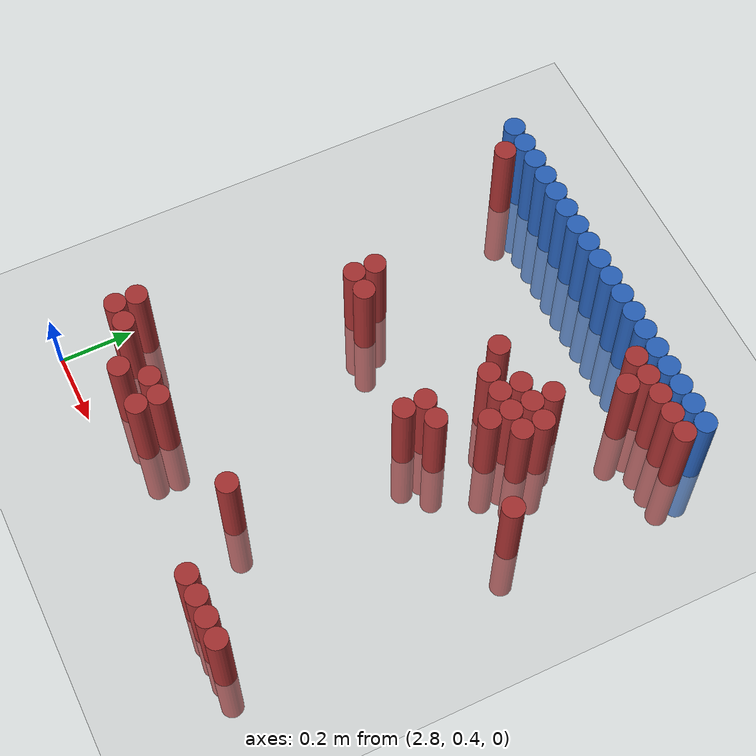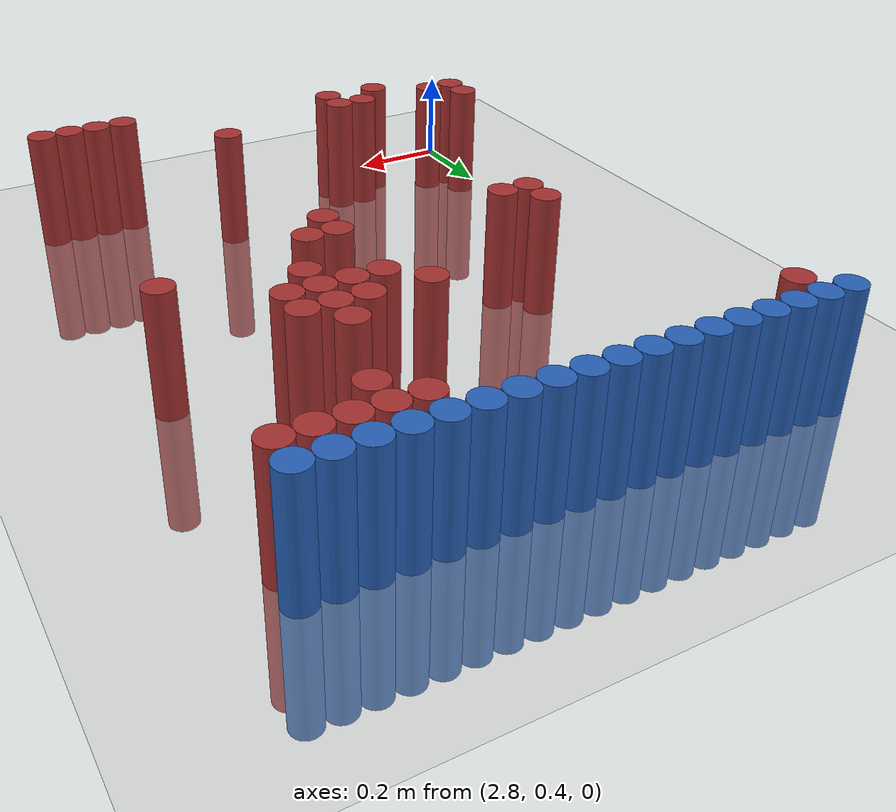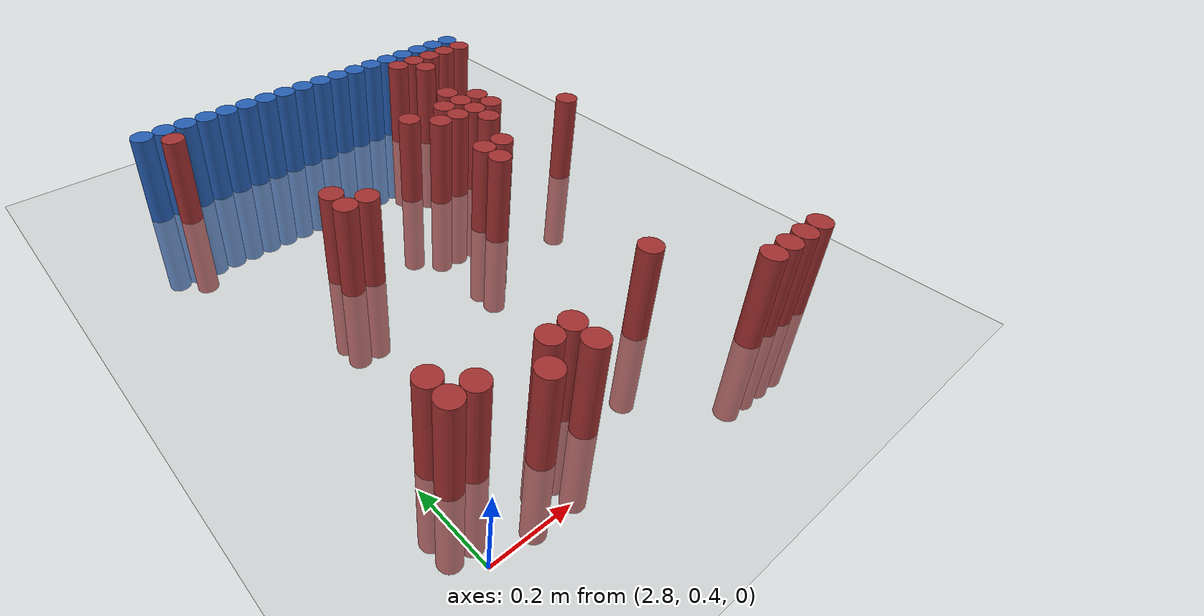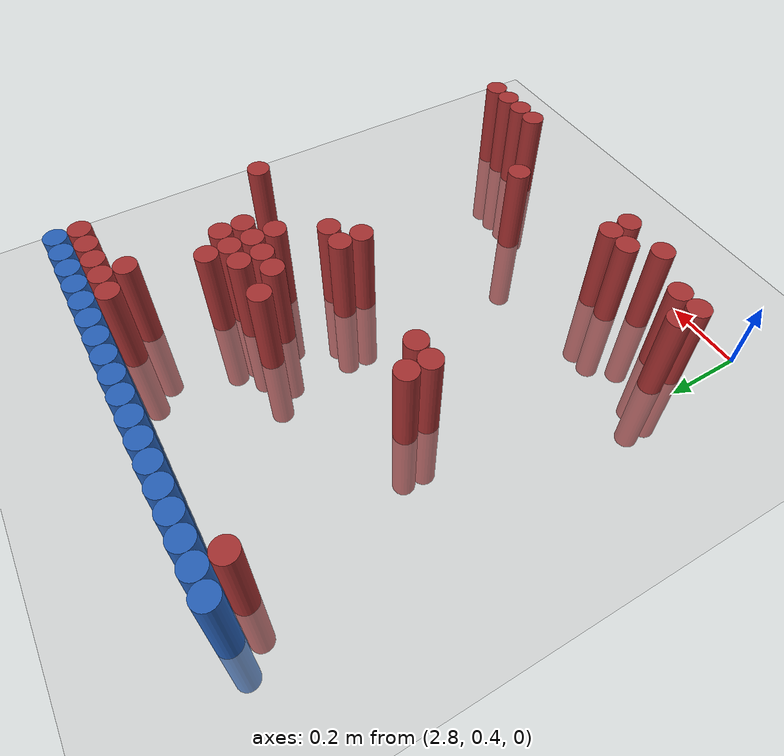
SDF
<sdf version="1.6">
 <world name="default">
  <model name="ground_plane">
   <static>1</static>
   <link name="link">
    <collision name="collision">
     <geometry><plane><normal>0 0 1</normal><size>100 100</size></plane></geometry>
     <surface><friction><ode><mu>100</mu><mu2>50</mu2></ode></friction></surface>
    </collision>
    <visual name="visual">
     <cast_shadows>0</cast_shadows>
     <geometry><plane><normal>0 0 1</normal><size>100 100</size></plane></geometry>
     <material>
      <script><uri>file://media/materials/scripts/gazebo.material</uri><name>Gazebo/Grey</name></script>
     </material>
    </visual>
   </link>
  </model>
  <model name="unit_cylinder_107">
   <static>1</static>
   <pose>2.790000 1.770000 0.000000 0.000000 0.000000 0.000000</pose>
   <link name="link">
    <inertial>
     <mass>1</mass>
     <inertia><ixx>0.145833</ixx><ixy>0</ixy><ixz>0</ixz><iyy>0.145833</iyy><iyz>0</iyz><izz>0.125</izz></inertia>
    </inertial>
    <collision name="collision">
     <geometry><cylinder><radius>0.030000</radius><length>0.5</length></cylinder></geometry>
    </collision>
    <visual name="visual">
     <geometry><cylinder><radius>0.030000</radius><length>0.5</length></cylinder></geometry>
     <material>
      <ambient>0.152000 0.379000 0.720000 1</ambient>
      <diffuse>0.152000 0.379000 0.720000 1</diffuse>
     </material>
     <material>
      <script><name>Gazebo/Grey</name><uri>file://media/materials/scripts/gazebo.material</uri></script>
     </material>
    </visual>
   </link>
  </model>
  <model name="unit_cylinder_108">
   <static>1</static>
   <pose>2.850000 1.770000 0.000000 0.000000 0.000000 0.000000</pose>
   <link name="link">
    <inertial>
     <mass>1</mass>
     <inertia><ixx>0.145833</ixx><ixy>0</ixy><ixz>0</ixz><iyy>0.145833</iyy><iyz>0</iyz><izz>0.125</izz></inertia>
    </inertial>
    <collision name="collision">
     <geometry><cylinder><radius>0.030000</radius><length>0.5</length></cylinder></geometry>
    </collision>
    <visual name="visual">
     <geometry><cylinder><radius>0.030000</radius><length>0.5</length></cylinder></geometry>
     <material>
      <ambient>0.152000 0.379000 0.720000 1</ambient>
      <diffuse>0.152000 0.379000 0.720000 1</diffuse>
     </material>
     <material>
      <script><name>Gazebo/Grey</name><uri>file://media/materials/scripts/gazebo.material</uri></script>
     </material>
    </visual>
   </link>
  </model>
  <model name="unit_cylinder_109">
   <static>1</static>
   <pose>2.910000 1.770000 0.000000 0.000000 0.000000 0.000000</pose>
   <link name="link">
    <inertial>
     <mass>1</mass>
     <inertia><ixx>0.145833</ixx><ixy>0</ixy><ixz>0</ixz><iyy>0.145833</iyy><iyz>0</iyz><izz>0.125</izz></inertia>
    </inertial>
    <collision name="collision">
     <geometry><cylinder><radius>0.030000</radius><length>0.5</length></cylinder></geometry>
    </collision>
    <visual name="visual">
     <geometry><cylinder><radius>0.030000</radius><length>0.5</length></cylinder></geometry>
     <material>
      <ambient>0.152000 0.379000 0.720000 1</ambient>
      <diffuse>0.152000 0.379000 0.720000 1</diffuse>
     </material>
     <material>
      <script><name>Gazebo/Grey</name><uri>file://media/materials/scripts/gazebo.material</uri></script>
     </material>
    </visual>
   </link>
  </model>
  <model name="unit_cylinder_110">
   <static>1</static>
   <pose>2.970000 1.770000 0.000000 0.000000 0.000000 0.000000</pose>
   <link name="link">
    <inertial>
     <mass>1</mass>
     <inertia><ixx>0.145833</ixx><ixy>0</ixy><ixz>0</ixz><iyy>0.145833</iyy><iyz>0</iyz><izz>0.125</izz></inertia>
    </inertial>
    <collision name="collision">
     <geometry><cylinder><radius>0.030000</radius><length>0.5</length></cylinder></geometry>
    </collision>
    <visual name="visual">
     <geometry><cylinder><radius>0.030000</radius><length>0.5</length></cylinder></geometry>
     <material>
      <ambient>0.152000 0.379000 0.720000 1</ambient>
      <diffuse>0.152000 0.379000 0.720000 1</diffuse>
     </material>
     <material>
      <script><name>Gazebo/Grey</name><uri>file://media/materials/scripts/gazebo.material</uri></script>
     </material>
    </visual>
   </link>
  </model>
  <model name="unit_cylinder_111">
   <static>1</static>
   <pose>3.030000 1.770000 0.000000 0.000000 0.000000 0.000000</pose>
   <link name="link">
    <inertial>
     <mass>1</mass>
     <inertia><ixx>0.145833</ixx><ixy>0</ixy><ixz>0</ixz><iyy>0.145833</iyy><iyz>0</iyz><izz>0.125</izz></inertia>
    </inertial>
    <collision name="collision">
     <geometry><cylinder><radius>0.030000</radius><length>0.5</length></cylinder></geometry>
    </collision>
    <visual name="visual">
     <geometry><cylinder><radius>0.030000</radius><length>0.5</length></cylinder></geometry>
     <material>
      <ambient>0.152000 0.379000 0.720000 1</ambient>
      <diffuse>0.152000 0.379000 0.720000 1</diffuse>
     </material>
     <material>
      <script><name>Gazebo/Grey</name><uri>file://media/materials/scripts/gazebo.material</uri></script>
     </material>
    </visual>
   </link>
  </model>
  <model name="unit_cylinder_112">
   <static>1</static>
   <pose>3.090000 1.770000 0.000000 0.000000 0.000000 0.000000</pose>
   <link name="link">
    <inertial>
     <mass>1</mass>
     <inertia><ixx>0.145833</ixx><ixy>0</ixy><ixz>0</ixz><iyy>0.145833</iyy><iyz>0</iyz><izz>0.125</izz></inertia>
    </inertial>
    <collision name="collision">
     <geometry><cylinder><radius>0.030000</radius><length>0.5</length></cylinder></geometry>
    </collision>
    <visual name="visual">
     <geometry><cylinder><radius>0.030000</radius><length>0.5</length></cylinder></geometry>
     <material>
      <ambient>0.152000 0.379000 0.720000 1</ambient>
      <diffuse>0.152000 0.379000 0.720000 1</diffuse>
     </material>
     <material>
      <script><name>Gazebo/Grey</name><uri>file://media/materials/scripts/gazebo.material</uri></script>
     </material>
    </visual>
   </link>
  </model>
  <model name="unit_cylinder_113">
   <static>1</static>
   <pose>3.150000 1.770000 0.000000 0.000000 0.000000 0.000000</pose>
   <link name="link">
    <inertial>
     <mass>1</mass>
     <inertia><ixx>0.145833</ixx><ixy>0</ixy><ixz>0</ixz><iyy>0.145833</iyy><iyz>0</iyz><izz>0.125</izz></inertia>
    </inertial>
    <collision name="collision">
     <geometry><cylinder><radius>0.030000</radius><length>0.5</length></cylinder></geometry>
    </collision>
    <visual name="visual">
     <geometry><cylinder><radius>0.030000</radius><length>0.5</length></cylinder></geometry>
     <material>
      <ambient>0.152000 0.379000 0.720000 1</ambient>
      <diffuse>0.152000 0.379000 0.720000 1</diffuse>
     </material>
     <material>
      <script><name>Gazebo/Grey</name><uri>file://media/materials/scripts/gazebo.material</uri></script>
     </material>
    </visual>
   </link>
  </model>
  <model name="unit_cylinder_114">
   <static>1</static>
   <pose>3.210000 1.770000 0.000000 0.000000 0.000000 0.000000</pose>
   <link name="link">
    <inertial>
     <mass>1</mass>
     <inertia><ixx>0.145833</ixx><ixy>0</ixy><ixz>0</ixz><iyy>0.145833</iyy><iyz>0</iyz><izz>0.125</izz></inertia>
    </inertial>
    <collision name="collision">
     <geometry><cylinder><radius>0.030000</radius><length>0.5</length></cylinder></geometry>
    </collision>
    <visual name="visual">
     <geometry><cylinder><radius>0.030000</radius><length>0.5</length></cylinder></geometry>
     <material>
      <ambient>0.152000 0.379000 0.720000 1</ambient>
      <diffuse>0.152000 0.379000 0.720000 1</diffuse>
     </material>
     <material>
      <script><name>Gazebo/Grey</name><uri>file://media/materials/scripts/gazebo.material</uri></script>
     </material>
    </visual>
   </link>
  </model>
  <model name="unit_cylinder_115">
   <static>1</static>
   <pose>3.270000 1.770000 0.000000 0.000000 0.000000 0.000000</pose>
   <link name="link">
    <inertial>
     <mass>1</mass>
     <inertia><ixx>0.145833</ixx><ixy>0</ixy><ixz>0</ixz><iyy>0.145833</iyy><iyz>0</iyz><izz>0.125</izz></inertia>
    </inertial>
    <collision name="collision">
     <geometry><cylinder><radius>0.030000</radius><length>0.5</length></cylinder></geometry>
    </collision>
    <visual name="visual">
     <geometry><cylinder><radius>0.030000</radius><length>0.5</length></cylinder></geometry>
     <material>
      <ambient>0.152000 0.379000 0.720000 1</ambient>
      <diffuse>0.152000 0.379000 0.720000 1</diffuse>
     </material>
     <material>
      <script><name>Gazebo/Grey</name><uri>file://media/materials/scripts/gazebo.material</uri></script>
     </material>
    </visual>
   </link>
  </model>
  <model name="unit_cylinder_116">
   <static>1</static>
   <pose>3.330000 1.770000 0.000000 0.000000 0.000000 0.000000</pose>
   <link name="link">
    <inertial>
     <mass>1</mass>
     <inertia><ixx>0.145833</ixx><ixy>0</ixy><ixz>0</ixz><iyy>0.145833</iyy><iyz>0</iyz><izz>0.125</izz></inertia>
    </inertial>
    <collision name="collision">
     <geometry><cylinder><radius>0.030000</radius><length>0.5</length></cylinder></geometry>
    </collision>
    <visual name="visual">
     <geometry><cylinder><radius>0.030000</radius><length>0.5</length></cylinder></geometry>
     <material>
      <ambient>0.152000 0.379000 0.720000 1</ambient>
      <diffuse>0.152000 0.379000 0.720000 1</diffuse>
     </material>
     <material>
      <script><name>Gazebo/Grey</name><uri>file://media/materials/scripts/gazebo.material</uri></script>
     </material>
    </visual>
   </link>
  </model>
  <model name="unit_cylinder_117">
   <static>1</static>
   <pose>3.390000 1.770000 0.000000 0.000000 0.000000 0.000000</pose>
   <link name="link">
    <inertial>
     <mass>1</mass>
     <inertia><ixx>0.145833</ixx><ixy>0</ixy><ixz>0</ixz><iyy>0.145833</iyy><iyz>0</iyz><izz>0.125</izz></inertia>
    </inertial>
    <collision name="collision">
     <geometry><cylinder><radius>0.030000</radius><length>0.5</length></cylinder></geometry>
    </collision>
    <visual name="visual">
     <geometry><cylinder><radius>0.030000</radius><length>0.5</length></cylinder></geometry>
     <material>
      <ambient>0.152000 0.379000 0.720000 1</ambient>
      <diffuse>0.152000 0.379000 0.720000 1</diffuse>
     </material>
     <material>
      <script><name>Gazebo/Grey</name><uri>file://media/materials/scripts/gazebo.material</uri></script>
     </material>
    </visual>
   </link>
  </model>
  <model name="unit_cylinder_118">
   <static>1</static>
   <pose>3.450000 1.770000 0.000000 0.000000 0.000000 0.000000</pose>
   <link name="link">
    <inertial>
     <mass>1</mass>
     <inertia><ixx>0.145833</ixx><ixy>0</ixy><ixz>0</ixz><iyy>0.145833</iyy><iyz>0</iyz><izz>0.125</izz></inertia>
    </inertial>
    <collision name="collision">
     <geometry><cylinder><radius>0.030000</radius><length>0.5</length></cylinder></geometry>
    </collision>
    <visual name="visual">
     <geometry><cylinder><radius>0.030000</radius><length>0.5</length></cylinder></geometry>
     <material>
      <ambient>0.152000 0.379000 0.720000 1</ambient>
      <diffuse>0.152000 0.379000 0.720000 1</diffuse>
     </material>
     <material>
      <script><name>Gazebo/Grey</name><uri>file://media/materials/scripts/gazebo.material</uri></script>
     </material>
    </visual>
   </link>
  </model>
  <model name="unit_cylinder_119">
   <static>1</static>
   <pose>3.510000 1.770000 0.000000 0.000000 0.000000 0.000000</pose>
   <link name="link">
    <inertial>
     <mass>1</mass>
     <inertia><ixx>0.145833</ixx><ixy>0</ixy><ixz>0</ixz><iyy>0.145833</iyy><iyz>0</iyz><izz>0.125</izz></inertia>
    </inertial>
    <collision name="collision">
     <geometry><cylinder><radius>0.030000</radius><length>0.5</length></cylinder></geometry>
    </collision>
    <visual name="visual">
     <geometry><cylinder><radius>0.030000</radius><length>0.5</length></cylinder></geometry>
     <material>
      <ambient>0.152000 0.379000 0.720000 1</ambient>
      <diffuse>0.152000 0.379000 0.720000 1</diffuse>
     </material>
     <material>
      <script><name>Gazebo/Grey</name><uri>file://media/materials/scripts/gazebo.material</uri></script>
     </material>
    </visual>
   </link>
  </model>
  <model name="unit_cylinder_120">
   <static>1</static>
   <pose>3.570000 1.770000 0.000000 0.000000 0.000000 0.000000</pose>
   <link name="link">
    <inertial>
     <mass>1</mass>
     <inertia><ixx>0.145833</ixx><ixy>0</ixy><ixz>0</ixz><iyy>0.145833</iyy><iyz>0</iyz><izz>0.125</izz></inertia>
    </inertial>
    <collision name="collision">
     <geometry><cylinder><radius>0.030000</radius><length>0.5</length></cylinder></geometry>
    </collision>
    <visual name="visual">
     <geometry><cylinder><radius>0.030000</radius><length>0.5</length></cylinder></geometry>
     <material>
      <ambient>0.152000 0.379000 0.720000 1</ambient>
      <diffuse>0.152000 0.379000 0.720000 1</diffuse>
     </material>
     <material>
      <script><name>Gazebo/Grey</name><uri>file://media/materials/scripts/gazebo.material</uri></script>
     </material>
    </visual>
   </link>
  </model>
  <model name="unit_cylinder_121">
   <static>1</static>
   <pose>3.630000 1.770000 0.000000 0.000000 0.000000 0.000000</pose>
   <link name="link">
    <inertial>
     <mass>1</mass>
     <inertia><ixx>0.145833</ixx><ixy>0</ixy><ixz>0</ixz><iyy>0.145833</iyy><iyz>0</iyz><izz>0.125</izz></inertia>
    </inertial>
    <collision name="collision">
     <geometry><cylinder><radius>0.030000</radius><length>0.5</length></cylinder></geometry>
    </collision>
    <visual name="visual">
     <geometry><cylinder><radius>0.030000</radius><length>0.5</length></cylinder></geometry>
     <material>
      <ambient>0.152000 0.379000 0.720000 1</ambient>
      <diffuse>0.152000 0.379000 0.720000 1</diffuse>
     </material>
     <material>
      <script><name>Gazebo/Grey</name><uri>file://media/materials/scripts/gazebo.material</uri></script>
     </material>
    </visual>
   </link>
  </model>
  <model name="unit_cylinder_122">
   <static>1</static>
   <pose>3.690000 1.770000 0.000000 0.000000 0.000000 0.000000</pose>
   <link name="link">
    <inertial>
     <mass>1</mass>
     <inertia><ixx>0.145833</ixx><ixy>0</ixy><ixz>0</ixz><iyy>0.145833</iyy><iyz>0</iyz><izz>0.125</izz></inertia>
    </inertial>
    <collision name="collision">
     <geometry><cylinder><radius>0.030000</radius><length>0.5</length></cylinder></geometry>
    </collision>
    <visual name="visual">
     <geometry><cylinder><radius>0.030000</radius><length>0.5</length></cylinder></geometry>
     <material>
      <ambient>0.152000 0.379000 0.720000 1</ambient>
      <diffuse>0.152000 0.379000 0.720000 1</diffuse>
     </material>
     <material>
      <script><name>Gazebo/Grey</name><uri>file://media/materials/scripts/gazebo.material</uri></script>
     </material>
    </visual>
   </link>
  </model>
  <model name="unit_cylinder_123">
   <static>1</static>
   <pose>3.750000 1.770000 0.000000 0.000000 0.000000 0.000000</pose>
   <link name="link">
    <inertial>
     <mass>1</mass>
     <inertia><ixx>0.145833</ixx><ixy>0</ixy><ixz>0</ixz><iyy>0.145833</iyy><iyz>0</iyz><izz>0.125</izz></inertia>
    </inertial>
    <collision name="collision">
     <geometry><cylinder><radius>0.030000</radius><length>0.5</length></cylinder></geometry>
    </collision>
    <visual name="visual">
     <geometry><cylinder><radius>0.030000</radius><length>0.5</length></cylinder></geometry>
     <material>
      <ambient>0.152000 0.379000 0.720000 1</ambient>
      <diffuse>0.152000 0.379000 0.720000 1</diffuse>
     </material>
     <material>
      <script><name>Gazebo/Grey</name><uri>file://media/materials/scripts/gazebo.material</uri></script>
     </material>
    </visual>
   </link>
  </model>
  <model name="unit_cylinder_124">
   <static>1</static>
   <pose>3.810000 1.770000 0.000000 0.000000 0.000000 0.000000</pose>
   <link name="link">
    <inertial>
     <mass>1</mass>
     <inertia><ixx>0.145833</ixx><ixy>0</ixy><ixz>0</ixz><iyy>0.145833</iyy><iyz>0</iyz><izz>0.125</izz></inertia>
    </inertial>
    <collision name="collision">
     <geometry><cylinder><radius>0.030000</radius><length>0.5</length></cylinder></geometry>
    </collision>
    <visual name="visual">
     <geometry><cylinder><radius>0.030000</radius><length>0.5</length></cylinder></geometry>
     <material>
      <ambient>0.152000 0.379000 0.720000 1</ambient>
      <diffuse>0.152000 0.379000 0.720000 1</diffuse>
     </material>
     <material>
      <script><name>Gazebo/Grey</name><uri>file://media/materials/scripts/gazebo.material</uri></script>
     </material>
    </visual>
   </link>
  </model>
  <model name="unit_cylinder_130">
   <static>1</static>
   <pose>2.850000 1.710000 0.000000 0.000000 0.000000 0.000000</pose>
   <link name="link">
    <inertial>
     <mass>1</mass>
     <inertia><ixx>0.145833</ixx><ixy>0</ixy><ixz>0</ixz><iyy>0.145833</iyy><iyz>0</iyz><izz>0.125</izz></inertia>
    </inertial>
    <collision name="collision">
     <geometry><cylinder><radius>0.030000</radius><length>0.5</length></cylinder></geometry>
    </collision>
    <visual name="visual">
     <geometry><cylinder><radius>0.030000</radius><length>0.5</length></cylinder></geometry>
     <material>
      <ambient>0.648000 0.192000 0.192000 1</ambient>
      <diffuse>0.648000 0.192000 0.192000 1</diffuse>
     </material>
     <material>
      <script><name>Gazebo/Grey</name><uri>file://media/materials/scripts/gazebo.material</uri></script>
     </material>
    </visual>
   </link>
  </model>
  <model name="unit_cylinder_131">
   <static>1</static>
   <pose>3.570000 1.710000 0.000000 0.000000 0.000000 0.000000</pose>
   <link name="link">
    <inertial>
     <mass>1</mass>
     <inertia><ixx>0.145833</ixx><ixy>0</ixy><ixz>0</ixz><iyy>0.145833</iyy><iyz>0</iyz><izz>0.125</izz></inertia>
    </inertial>
    <collision name="collision">
     <geometry><cylinder><radius>0.030000</radius><length>0.5</length></cylinder></geometry>
    </collision>
    <visual name="visual">
     <geometry><cylinder><radius>0.030000</radius><length>0.5</length></cylinder></geometry>
     <material>
      <ambient>0.648000 0.192000 0.192000 1</ambient>
      <diffuse>0.648000 0.192000 0.192000 1</diffuse>
     </material>
     <material>
      <script><name>Gazebo/Grey</name><uri>file://media/materials/scripts/gazebo.material</uri></script>
     </material>
    </visual>
   </link>
  </model>
  <model name="unit_cylinder_132">
   <static>1</static>
   <pose>3.630000 1.710000 0.000000 0.000000 0.000000 0.000000</pose>
   <link name="link">
    <inertial>
     <mass>1</mass>
     <inertia><ixx>0.145833</ixx><ixy>0</ixy><ixz>0</ixz><iyy>0.145833</iyy><iyz>0</iyz><izz>0.125</izz></inertia>
    </inertial>
    <collision name="collision">
     <geometry><cylinder><radius>0.030000</radius><length>0.5</length></cylinder></geometry>
    </collision>
    <visual name="visual">
     <geometry><cylinder><radius>0.030000</radius><length>0.5</length></cylinder></geometry>
     <material>
      <ambient>0.648000 0.192000 0.192000 1</ambient>
      <diffuse>0.648000 0.192000 0.192000 1</diffuse>
     </material>
     <material>
      <script><name>Gazebo/Grey</name><uri>file://media/materials/scripts/gazebo.material</uri></script>
     </material>
    </visual>
   </link>
  </model>
  <model name="unit_cylinder_133">
   <static>1</static>
   <pose>3.690000 1.710000 0.000000 0.000000 0.000000 0.000000</pose>
   <link name="link">
    <inertial>
     <mass>1</mass>
     <inertia><ixx>0.145833</ixx><ixy>0</ixy><ixz>0</ixz><iyy>0.145833</iyy><iyz>0</iyz><izz>0.125</izz></inertia>
    </inertial>
    <collision name="collision">
     <geometry><cylinder><radius>0.030000</radius><length>0.5</length></cylinder></geometry>
    </collision>
    <visual name="visual">
     <geometry><cylinder><radius>0.030000</radius><length>0.5</length></cylinder></geometry>
     <material>
      <ambient>0.648000 0.192000 0.192000 1</ambient>
      <diffuse>0.648000 0.192000 0.192000 1</diffuse>
     </material>
     <material>
      <script><name>Gazebo/Grey</name><uri>file://media/materials/scripts/gazebo.material</uri></script>
     </material>
    </visual>
   </link>
  </model>
  <model name="unit_cylinder_134">
   <static>1</static>
   <pose>3.750000 1.710000 0.000000 0.000000 0.000000 0.000000</pose>
   <link name="link">
    <inertial>
     <mass>1</mass>
     <inertia><ixx>0.145833</ixx><ixy>0</ixy><ixz>0</ixz><iyy>0.145833</iyy><iyz>0</iyz><izz>0.125</izz></inertia>
    </inertial>
    <collision name="collision">
     <geometry><cylinder><radius>0.030000</radius><length>0.5</length></cylinder></geometry>
    </collision>
    <visual name="visual">
     <geometry><cylinder><radius>0.030000</radius><length>0.5</length></cylinder></geometry>
     <material>
      <ambient>0.648000 0.192000 0.192000 1</ambient>
      <diffuse>0.648000 0.192000 0.192000 1</diffuse>
     </material>
     <material>
      <script><name>Gazebo/Grey</name><uri>file://media/materials/scripts/gazebo.material</uri></script>
     </material>
    </visual>
   </link>
  </model>
  <model name="unit_cylinder_135">
   <static>1</static>
   <pose>3.810000 1.710000 0.000000 0.000000 0.000000 0.000000</pose>
   <link name="link">
    <inertial>
     <mass>1</mass>
     <inertia><ixx>0.145833</ixx><ixy>0</ixy><ixz>0</ixz><iyy>0.145833</iyy><iyz>0</iyz><izz>0.125</izz></inertia>
    </inertial>
    <collision name="collision">
     <geometry><cylinder><radius>0.030000</radius><length>0.5</length></cylinder></geometry>
    </collision>
    <visual name="visual">
     <geometry><cylinder><radius>0.030000</radius><length>0.5</length></cylinder></geometry>
     <material>
      <ambient>0.648000 0.192000 0.192000 1</ambient>
      <diffuse>0.648000 0.192000 0.192000 1</diffuse>
     </material>
     <material>
      <script><name>Gazebo/Grey</name><uri>file://media/materials/scripts/gazebo.material</uri></script>
     </material>
    </visual>
   </link>
  </model>
  <model name="unit_cylinder_137">
   <static>1</static>
   <pose>3.630000 1.650000 0.000000 0.000000 0.000000 0.000000</pose>
   <link name="link">
    <inertial>
     <mass>1</mass>
     <inertia><ixx>0.145833</ixx><ixy>0</ixy><ixz>0</ixz><iyy>0.145833</iyy><iyz>0</iyz><izz>0.125</izz></inertia>
    </inertial>
    <collision name="collision">
     <geometry><cylinder><radius>0.030000</radius><length>0.5</length></cylinder></geometry>
    </collision>
    <visual name="visual">
     <geometry><cylinder><radius>0.030000</radius><length>0.5</length></cylinder></geometry>
     <material>
      <ambient>0.648000 0.192000 0.192000 1</ambient>
      <diffuse>0.648000 0.192000 0.192000 1</diffuse>
     </material>
     <material>
      <script><name>Gazebo/Grey</name><uri>file://media/materials/scripts/gazebo.material</uri></script>
     </material>
    </visual>
   </link>
  </model>
  <model name="unit_cylinder_151">
   <static>1</static>
   <pose>3.570000 1.470000 0.000000 0.000000 0.000000 0.000000</pose>
   <link name="link">
    <inertial>
     <mass>1</mass>
     <inertia><ixx>0.145833</ixx><ixy>0</ixy><ixz>0</ixz><iyy>0.145833</iyy><iyz>0</iyz><izz>0.125</izz></inertia>
    </inertial>
    <collision name="collision">
     <geometry><cylinder><radius>0.030000</radius><length>0.5</length></cylinder></geometry>
    </collision>
    <visual name="visual">
     <geometry><cylinder><radius>0.030000</radius><length>0.5</length></cylinder></geometry>
     <material>
      <ambient>0.648000 0.192000 0.192000 1</ambient>
      <diffuse>0.648000 0.192000 0.192000 1</diffuse>
     </material>
     <material>
      <script><name>Gazebo/Grey</name><uri>file://media/materials/scripts/gazebo.material</uri></script>
     </material>
    </visual>
   </link>
  </model>
  <model name="unit_cylinder_154">
   <static>1</static>
   <pose>3.390000 1.410000 0.000000 0.000000 0.000000 0.000000</pose>
   <link name="link">
    <inertial>
     <mass>1</mass>
     <inertia><ixx>0.145833</ixx><ixy>0</ixy><ixz>0</ixz><iyy>0.145833</iyy><iyz>0</iyz><izz>0.125</izz></inertia>
    </inertial>
    <collision name="collision">
     <geometry><cylinder><radius>0.030000</radius><length>0.5</length></cylinder></geometry>
    </collision>
    <visual name="visual">
     <geometry><cylinder><radius>0.030000</radius><length>0.5</length></cylinder></geometry>
     <material>
      <ambient>0.648000 0.192000 0.192000 1</ambient>
      <diffuse>0.648000 0.192000 0.192000 1</diffuse>
     </material>
     <material>
      <script><name>Gazebo/Grey</name><uri>file://media/materials/scripts/gazebo.material</uri></script>
     </material>
    </visual>
   </link>
  </model>
  <model name="unit_cylinder_155">
   <static>1</static>
   <pose>3.510000 1.410000 0.000000 0.000000 0.000000 0.000000</pose>
   <link name="link">
    <inertial>
     <mass>1</mass>
     <inertia><ixx>0.145833</ixx><ixy>0</ixy><ixz>0</ixz><iyy>0.145833</iyy><iyz>0</iyz><izz>0.125</izz></inertia>
    </inertial>
    <collision name="collision">
     <geometry><cylinder><radius>0.030000</radius><length>0.5</length></cylinder></geometry>
    </collision>
    <visual name="visual">
     <geometry><cylinder><radius>0.030000</radius><length>0.5</length></cylinder></geometry>
     <material>
      <ambient>0.648000 0.192000 0.192000 1</ambient>
      <diffuse>0.648000 0.192000 0.192000 1</diffuse>
     </material>
     <material>
      <script><name>Gazebo/Grey</name><uri>file://media/materials/scripts/gazebo.material</uri></script>
     </material>
    </visual>
   </link>
  </model>
  <model name="unit_cylinder_156">
   <static>1</static>
   <pose>3.570000 1.410000 0.000000 0.000000 0.000000 0.000000</pose>
   <link name="link">
    <inertial>
     <mass>1</mass>
     <inertia><ixx>0.145833</ixx><ixy>0</ixy><ixz>0</ixz><iyy>0.145833</iyy><iyz>0</iyz><izz>0.125</izz></inertia>
    </inertial>
    <collision name="collision">
     <geometry><cylinder><radius>0.030000</radius><length>0.5</length></cylinder></geometry>
    </collision>
    <visual name="visual">
     <geometry><cylinder><radius>0.030000</radius><length>0.5</length></cylinder></geometry>
     <material>
      <ambient>0.648000 0.192000 0.192000 1</ambient>
      <diffuse>0.648000 0.192000 0.192000 1</diffuse>
     </material>
     <material>
      <script><name>Gazebo/Grey</name><uri>file://media/materials/scripts/gazebo.material</uri></script>
     </material>
    </visual>
   </link>
  </model>
  <model name="unit_cylinder_157">
   <static>1</static>
   <pose>3.630000 1.410000 0.000000 0.000000 0.000000 0.000000</pose>
   <link name="link">
    <inertial>
     <mass>1</mass>
     <inertia><ixx>0.145833</ixx><ixy>0</ixy><ixz>0</ixz><iyy>0.145833</iyy><iyz>0</iyz><izz>0.125</izz></inertia>
    </inertial>
    <collision name="collision">
     <geometry><cylinder><radius>0.030000</radius><length>0.5</length></cylinder></geometry>
    </collision>
    <visual name="visual">
     <geometry><cylinder><radius>0.030000</radius><length>0.5</length></cylinder></geometry>
     <material>
      <ambient>0.648000 0.192000 0.192000 1</ambient>
      <diffuse>0.648000 0.192000 0.192000 1</diffuse>
     </material>
     <material>
      <script><name>Gazebo/Grey</name><uri>file://media/materials/scripts/gazebo.material</uri></script>
     </material>
    </visual>
   </link>
  </model>
  <model name="unit_cylinder_162">
   <static>1</static>
   <pose>3.450000 1.350000 0.000000 0.000000 0.000000 0.000000</pose>
   <link name="link">
    <inertial>
     <mass>1</mass>
     <inertia><ixx>0.145833</ixx><ixy>0</ixy><ixz>0</ixz><iyy>0.145833</iyy><iyz>0</iyz><izz>0.125</izz></inertia>
    </inertial>
    <collision name="collision">
     <geometry><cylinder><radius>0.030000</radius><length>0.5</length></cylinder></geometry>
    </collision>
    <visual name="visual">
     <geometry><cylinder><radius>0.030000</radius><length>0.5</length></cylinder></geometry>
     <material>
      <ambient>0.648000 0.192000 0.192000 1</ambient>
      <diffuse>0.648000 0.192000 0.192000 1</diffuse>
     </material>
     <material>
      <script><name>Gazebo/Grey</name><uri>file://media/materials/scripts/gazebo.material</uri></script>
     </material>
    </visual>
   </link>
  </model>
  <model name="unit_cylinder_163">
   <static>1</static>
   <pose>3.510000 1.350000 0.000000 0.000000 0.000000 0.000000</pose>
   <link name="link">
    <inertial>
     <mass>1</mass>
     <inertia><ixx>0.145833</ixx><ixy>0</ixy><ixz>0</ixz><iyy>0.145833</iyy><iyz>0</iyz><izz>0.125</izz></inertia>
    </inertial>
    <collision name="collision">
     <geometry><cylinder><radius>0.030000</radius><length>0.5</length></cylinder></geometry>
    </collision>
    <visual name="visual">
     <geometry><cylinder><radius>0.030000</radius><length>0.5</length></cylinder></geometry>
     <material>
      <ambient>0.648000 0.192000 0.192000 1</ambient>
      <diffuse>0.648000 0.192000 0.192000 1</diffuse>
     </material>
     <material>
      <script><name>Gazebo/Grey</name><uri>file://media/materials/scripts/gazebo.material</uri></script>
     </material>
    </visual>
   </link>
  </model>
  <model name="unit_cylinder_164">
   <static>1</static>
   <pose>3.570000 1.350000 0.000000 0.000000 0.000000 0.000000</pose>
   <link name="link">
    <inertial>
     <mass>1</mass>
     <inertia><ixx>0.145833</ixx><ixy>0</ixy><ixz>0</ixz><iyy>0.145833</iyy><iyz>0</iyz><izz>0.125</izz></inertia>
    </inertial>
    <collision name="collision">
     <geometry><cylinder><radius>0.030000</radius><length>0.5</length></cylinder></geometry>
    </collision>
    <visual name="visual">
     <geometry><cylinder><radius>0.030000</radius><length>0.5</length></cylinder></geometry>
     <material>
      <ambient>0.648000 0.192000 0.192000 1</ambient>
      <diffuse>0.648000 0.192000 0.192000 1</diffuse>
     </material>
     <material>
      <script><name>Gazebo/Grey</name><uri>file://media/materials/scripts/gazebo.material</uri></script>
     </material>
    </visual>
   </link>
  </model>
  <model name="unit_cylinder_165">
   <static>1</static>
   <pose>3.630000 1.350000 0.000000 0.000000 0.000000 0.000000</pose>
   <link name="link">
    <inertial>
     <mass>1</mass>
     <inertia><ixx>0.145833</ixx><ixy>0</ixy><ixz>0</ixz><iyy>0.145833</iyy><iyz>0</iyz><izz>0.125</izz></inertia>
    </inertial>
    <collision name="collision">
     <geometry><cylinder><radius>0.030000</radius><length>0.5</length></cylinder></geometry>
    </collision>
    <visual name="visual">
     <geometry><cylinder><radius>0.030000</radius><length>0.5</length></cylinder></geometry>
     <material>
      <ambient>0.648000 0.192000 0.192000 1</ambient>
      <diffuse>0.648000 0.192000 0.192000 1</diffuse>
     </material>
     <material>
      <script><name>Gazebo/Grey</name><uri>file://media/materials/scripts/gazebo.material</uri></script>
     </material>
    </visual>
   </link>
  </model>
  <model name="unit_cylinder_170">
   <static>1</static>
   <pose>3.570000 1.290000 0.000000 0.000000 0.000000 0.000000</pose>
   <link name="link">
    <inertial>
     <mass>1</mass>
     <inertia><ixx>0.145833</ixx><ixy>0</ixy><ixz>0</ixz><iyy>0.145833</iyy><iyz>0</iyz><izz>0.125</izz></inertia>
    </inertial>
    <collision name="collision">
     <geometry><cylinder><radius>0.030000</radius><length>0.5</length></cylinder></geometry>
    </collision>
    <visual name="visual">
     <geometry><cylinder><radius>0.030000</radius><length>0.5</length></cylinder></geometry>
     <material>
      <ambient>0.648000 0.192000 0.192000 1</ambient>
      <diffuse>0.648000 0.192000 0.192000 1</diffuse>
     </material>
     <material>
      <script><name>Gazebo/Grey</name><uri>file://media/materials/scripts/gazebo.material</uri></script>
     </material>
    </visual>
   </link>
  </model>
  <model name="unit_cylinder_171">
   <static>1</static>
   <pose>3.030000 1.230000 0.000000 0.000000 0.000000 0.000000</pose>
   <link name="link">
    <inertial>
     <mass>1</mass>
     <inertia><ixx>0.145833</ixx><ixy>0</ixy><ixz>0</ixz><iyy>0.145833</iyy><iyz>0</iyz><izz>0.125</izz></inertia>
    </inertial>
    <collision name="collision">
     <geometry><cylinder><radius>0.030000</radius><length>0.5</length></cylinder></geometry>
    </collision>
    <visual name="visual">
     <geometry><cylinder><radius>0.030000</radius><length>0.5</length></cylinder></geometry>
     <material>
      <ambient>0.648000 0.192000 0.192000 1</ambient>
      <diffuse>0.648000 0.192000 0.192000 1</diffuse>
     </material>
     <material>
      <script><name>Gazebo/Grey</name><uri>file://media/materials/scripts/gazebo.material</uri></script>
     </material>
    </visual>
   </link>
  </model>
  <model name="unit_cylinder_172">
   <static>1</static>
   <pose>3.810000 1.230000 0.000000 0.000000 0.000000 0.000000</pose>
   <link name="link">
    <inertial>
     <mass>1</mass>
     <inertia><ixx>0.145833</ixx><ixy>0</ixy><ixz>0</ixz><iyy>0.145833</iyy><iyz>0</iyz><izz>0.125</izz></inertia>
    </inertial>
    <collision name="collision">
     <geometry><cylinder><radius>0.030000</radius><length>0.5</length></cylinder></geometry>
    </collision>
    <visual name="visual">
     <geometry><cylinder><radius>0.030000</radius><length>0.5</length></cylinder></geometry>
     <material>
      <ambient>0.648000 0.192000 0.192000 1</ambient>
      <diffuse>0.648000 0.192000 0.192000 1</diffuse>
     </material>
     <material>
      <script><name>Gazebo/Grey</name><uri>file://media/materials/scripts/gazebo.material</uri></script>
     </material>
    </visual>
   </link>
  </model>
  <model name="unit_cylinder_173">
   <static>1</static>
   <pose>3.030000 1.170000 0.000000 0.000000 0.000000 0.000000</pose>
   <link name="link">
    <inertial>
     <mass>1</mass>
     <inertia><ixx>0.145833</ixx><ixy>0</ixy><ixz>0</ixz><iyy>0.145833</iyy><iyz>0</iyz><izz>0.125</izz></inertia>
    </inertial>
    <collision name="collision">
     <geometry><cylinder><radius>0.030000</radius><length>0.5</length></cylinder></geometry>
    </collision>
    <visual name="visual">
     <geometry><cylinder><radius>0.030000</radius><length>0.5</length></cylinder></geometry>
     <material>
      <ambient>0.648000 0.192000 0.192000 1</ambient>
      <diffuse>0.648000 0.192000 0.192000 1</diffuse>
     </material>
     <material>
      <script><name>Gazebo/Grey</name><uri>file://media/materials/scripts/gazebo.material</uri></script>
     </material>
    </visual>
   </link>
  </model>
  <model name="unit_cylinder_174">
   <static>1</static>
   <pose>3.090000 1.170000 0.000000 0.000000 0.000000 0.000000</pose>
   <link name="link">
    <inertial>
     <mass>1</mass>
     <inertia><ixx>0.145833</ixx><ixy>0</ixy><ixz>0</ixz><iyy>0.145833</iyy><iyz>0</iyz><izz>0.125</izz></inertia>
    </inertial>
    <collision name="collision">
     <geometry><cylinder><radius>0.030000</radius><length>0.5</length></cylinder></geometry>
    </collision>
    <visual name="visual">
     <geometry><cylinder><radius>0.030000</radius><length>0.5</length></cylinder></geometry>
     <material>
      <ambient>0.648000 0.192000 0.192000 1</ambient>
      <diffuse>0.648000 0.192000 0.192000 1</diffuse>
     </material>
     <material>
      <script><name>Gazebo/Grey</name><uri>file://media/materials/scripts/gazebo.material</uri></script>
     </material>
    </visual>
   </link>
  </model>
  <model name="unit_cylinder_175">
   <static>1</static>
   <pose>3.450000 1.170000 0.000000 0.000000 0.000000 0.000000</pose>
   <link name="link">
    <inertial>
     <mass>1</mass>
     <inertia><ixx>0.145833</ixx><ixy>0</ixy><ixz>0</ixz><iyy>0.145833</iyy><iyz>0</iyz><izz>0.125</izz></inertia>
    </inertial>
    <collision name="collision">
     <geometry><cylinder><radius>0.030000</radius><length>0.5</length></cylinder></geometry>
    </collision>
    <visual name="visual">
     <geometry><cylinder><radius>0.030000</radius><length>0.5</length></cylinder></geometry>
     <material>
      <ambient>0.648000 0.192000 0.192000 1</ambient>
      <diffuse>0.648000 0.192000 0.192000 1</diffuse>
     </material>
     <material>
      <script><name>Gazebo/Grey</name><uri>file://media/materials/scripts/gazebo.material</uri></script>
     </material>
    </visual>
   </link>
  </model>
  <model name="unit_cylinder_176">
   <static>1</static>
   <pose>3.510000 1.170000 0.000000 0.000000 0.000000 0.000000</pose>
   <link name="link">
    <inertial>
     <mass>1</mass>
     <inertia><ixx>0.145833</ixx><ixy>0</ixy><ixz>0</ixz><iyy>0.145833</iyy><iyz>0</iyz><izz>0.125</izz></inertia>
    </inertial>
    <collision name="collision">
     <geometry><cylinder><radius>0.030000</radius><length>0.5</length></cylinder></geometry>
    </collision>
    <visual name="visual">
     <geometry><cylinder><radius>0.030000</radius><length>0.5</length></cylinder></geometry>
     <material>
      <ambient>0.648000 0.192000 0.192000 1</ambient>
      <diffuse>0.648000 0.192000 0.192000 1</diffuse>
     </material>
     <material>
      <script><name>Gazebo/Grey</name><uri>file://media/materials/scripts/gazebo.material</uri></script>
     </material>
    </visual>
   </link>
  </model>
  <model name="unit_cylinder_180">
   <static>1</static>
   <pose>3.450000 1.110000 0.000000 0.000000 0.000000 0.000000</pose>
   <link name="link">
    <inertial>
     <mass>1</mass>
     <inertia><ixx>0.145833</ixx><ixy>0</ixy><ixz>0</ixz><iyy>0.145833</iyy><iyz>0</iyz><izz>0.125</izz></inertia>
    </inertial>
    <collision name="collision">
     <geometry><cylinder><radius>0.030000</radius><length>0.5</length></cylinder></geometry>
    </collision>
    <visual name="visual">
     <geometry><cylinder><radius>0.030000</radius><length>0.5</length></cylinder></geometry>
     <material>
      <ambient>0.648000 0.192000 0.192000 1</ambient>
      <diffuse>0.648000 0.192000 0.192000 1</diffuse>
     </material>
     <material>
      <script><name>Gazebo/Grey</name><uri>file://media/materials/scripts/gazebo.material</uri></script>
     </material>
    </visual>
   </link>
  </model>
  <model name="unit_cylinder_197">
   <static>1</static>
   <pose>2.850000 0.630000 0.000000 0.000000 0.000000 0.000000</pose>
   <link name="link">
    <inertial>
     <mass>1</mass>
     <inertia><ixx>0.145833</ixx><ixy>0</ixy><ixz>0</ixz><iyy>0.145833</iyy><iyz>0</iyz><izz>0.125</izz></inertia>
    </inertial>
    <collision name="collision">
     <geometry><cylinder><radius>0.030000</radius><length>0.5</length></cylinder></geometry>
    </collision>
    <visual name="visual">
     <geometry><cylinder><radius>0.030000</radius><length>0.5</length></cylinder></geometry>
     <material>
      <ambient>0.648000 0.192000 0.192000 1</ambient>
      <diffuse>0.648000 0.192000 0.192000 1</diffuse>
     </material>
     <material>
      <script><name>Gazebo/Grey</name><uri>file://media/materials/scripts/gazebo.material</uri></script>
     </material>
    </visual>
   </link>
  </model>
  <model name="unit_cylinder_198">
   <static>1</static>
   <pose>3.450000 0.630000 0.000000 0.000000 0.000000 0.000000</pose>
   <link name="link">
    <inertial>
     <mass>1</mass>
     <inertia><ixx>0.145833</ixx><ixy>0</ixy><ixz>0</ixz><iyy>0.145833</iyy><iyz>0</iyz><izz>0.125</izz></inertia>
    </inertial>
    <collision name="collision">
     <geometry><cylinder><radius>0.030000</radius><length>0.5</length></cylinder></geometry>
    </collision>
    <visual name="visual">
     <geometry><cylinder><radius>0.030000</radius><length>0.5</length></cylinder></geometry>
     <material>
      <ambient>0.648000 0.192000 0.192000 1</ambient>
      <diffuse>0.648000 0.192000 0.192000 1</diffuse>
     </material>
     <material>
      <script><name>Gazebo/Grey</name><uri>file://media/materials/scripts/gazebo.material</uri></script>
     </material>
    </visual>
   </link>
  </model>
  <model name="unit_cylinder_202">
   <static>1</static>
   <pose>2.850000 0.570000 0.000000 0.000000 0.000000 0.000000</pose>
   <link name="link">
    <inertial>
     <mass>1</mass>
     <inertia><ixx>0.145833</ixx><ixy>0</ixy><ixz>0</ixz><iyy>0.145833</iyy><iyz>0</iyz><izz>0.125</izz></inertia>
    </inertial>
    <collision name="collision">
     <geometry><cylinder><radius>0.030000</radius><length>0.5</length></cylinder></geometry>
    </collision>
    <visual name="visual">
     <geometry><cylinder><radius>0.030000</radius><length>0.5</length></cylinder></geometry>
     <material>
      <ambient>0.648000 0.192000 0.192000 1</ambient>
      <diffuse>0.648000 0.192000 0.192000 1</diffuse>
     </material>
     <material>
      <script><name>Gazebo/Grey</name><uri>file://media/materials/scripts/gazebo.material</uri></script>
     </material>
    </visual>
   </link>
  </model>
  <model name="unit_cylinder_203">
   <static>1</static>
   <pose>2.910000 0.570000 0.000000 0.000000 0.000000 0.000000</pose>
   <link name="link">
    <inertial>
     <mass>1</mass>
     <inertia><ixx>0.145833</ixx><ixy>0</ixy><ixz>0</ixz><iyy>0.145833</iyy><iyz>0</iyz><izz>0.125</izz></inertia>
    </inertial>
    <collision name="collision">
     <geometry><cylinder><radius>0.030000</radius><length>0.5</length></cylinder></geometry>
    </collision>
    <visual name="visual">
     <geometry><cylinder><radius>0.030000</radius><length>0.5</length></cylinder></geometry>
     <material>
      <ambient>0.648000 0.192000 0.192000 1</ambient>
      <diffuse>0.648000 0.192000 0.192000 1</diffuse>
     </material>
     <material>
      <script><name>Gazebo/Grey</name><uri>file://media/materials/scripts/gazebo.material</uri></script>
     </material>
    </visual>
   </link>
  </model>
  <model name="unit_cylinder_204">
   <static>1</static>
   <pose>3.090000 0.570000 0.000000 0.000000 0.000000 0.000000</pose>
   <link name="link">
    <inertial>
     <mass>1</mass>
     <inertia><ixx>0.145833</ixx><ixy>0</ixy><ixz>0</ixz><iyy>0.145833</iyy><iyz>0</iyz><izz>0.125</izz></inertia>
    </inertial>
    <collision name="collision">
     <geometry><cylinder><radius>0.030000</radius><length>0.5</length></cylinder></geometry>
    </collision>
    <visual name="visual">
     <geometry><cylinder><radius>0.030000</radius><length>0.5</length></cylinder></geometry>
     <material>
      <ambient>0.648000 0.192000 0.192000 1</ambient>
      <diffuse>0.648000 0.192000 0.192000 1</diffuse>
     </material>
     <material>
      <script><name>Gazebo/Grey</name><uri>file://media/materials/scripts/gazebo.material</uri></script>
     </material>
    </visual>
   </link>
  </model>
  <model name="unit_cylinder_205">
   <static>1</static>
   <pose>3.150000 0.570000 0.000000 0.000000 0.000000 0.000000</pose>
   <link name="link">
    <inertial>
     <mass>1</mass>
     <inertia><ixx>0.145833</ixx><ixy>0</ixy><ixz>0</ixz><iyy>0.145833</iyy><iyz>0</iyz><izz>0.125</izz></inertia>
    </inertial>
    <collision name="collision">
     <geometry><cylinder><radius>0.030000</radius><length>0.5</length></cylinder></geometry>
    </collision>
    <visual name="visual">
     <geometry><cylinder><radius>0.030000</radius><length>0.5</length></cylinder></geometry>
     <material>
      <ambient>0.648000 0.192000 0.192000 1</ambient>
      <diffuse>0.648000 0.192000 0.192000 1</diffuse>
     </material>
     <material>
      <script><name>Gazebo/Grey</name><uri>file://media/materials/scripts/gazebo.material</uri></script>
     </material>
    </visual>
   </link>
  </model>
  <model name="unit_cylinder_206">
   <static>1</static>
   <pose>3.030000 0.510000 0.000000 0.000000 0.000000 0.000000</pose>
   <link name="link">
    <inertial>
     <mass>1</mass>
     <inertia><ixx>0.145833</ixx><ixy>0</ixy><ixz>0</ixz><iyy>0.145833</iyy><iyz>0</iyz><izz>0.125</izz></inertia>
    </inertial>
    <collision name="collision">
     <geometry><cylinder><radius>0.030000</radius><length>0.5</length></cylinder></geometry>
    </collision>
    <visual name="visual">
     <geometry><cylinder><radius>0.030000</radius><length>0.5</length></cylinder></geometry>
     <material>
      <ambient>0.648000 0.192000 0.192000 1</ambient>
      <diffuse>0.648000 0.192000 0.192000 1</diffuse>
     </material>
     <material>
      <script><name>Gazebo/Grey</name><uri>file://media/materials/scripts/gazebo.material</uri></script>
     </material>
    </visual>
   </link>
  </model>
  <model name="unit_cylinder_207">
   <static>1</static>
   <pose>3.150000 0.510000 0.000000 0.000000 0.000000 0.000000</pose>
   <link name="link">
    <inertial>
     <mass>1</mass>
     <inertia><ixx>0.145833</ixx><ixy>0</ixy><ixz>0</ixz><iyy>0.145833</iyy><iyz>0</iyz><izz>0.125</izz></inertia>
    </inertial>
    <collision name="collision">
     <geometry><cylinder><radius>0.030000</radius><length>0.5</length></cylinder></geometry>
    </collision>
    <visual name="visual">
     <geometry><cylinder><radius>0.030000</radius><length>0.5</length></cylinder></geometry>
     <material>
      <ambient>0.648000 0.192000 0.192000 1</ambient>
      <diffuse>0.648000 0.192000 0.192000 1</diffuse>
     </material>
     <material>
      <script><name>Gazebo/Grey</name><uri>file://media/materials/scripts/gazebo.material</uri></script>
     </material>
    </visual>
   </link>
  </model>
  <model name="unit_cylinder_208">
   <static>1</static>
   <pose>3.630000 0.450000 0.000000 0.000000 0.000000 0.000000</pose>
   <link name="link">
    <inertial>
     <mass>1</mass>
     <inertia><ixx>0.145833</ixx><ixy>0</ixy><ixz>0</ixz><iyy>0.145833</iyy><iyz>0</iyz><izz>0.125</izz></inertia>
    </inertial>
    <collision name="collision">
     <geometry><cylinder><radius>0.030000</radius><length>0.5</length></cylinder></geometry>
    </collision>
    <visual name="visual">
     <geometry><cylinder><radius>0.030000</radius><length>0.5</length></cylinder></geometry>
     <material>
      <ambient>0.648000 0.192000 0.192000 1</ambient>
      <diffuse>0.648000 0.192000 0.192000 1</diffuse>
     </material>
     <material>
      <script><name>Gazebo/Grey</name><uri>file://media/materials/scripts/gazebo.material</uri></script>
     </material>
    </visual>
   </link>
  </model>
  <model name="unit_cylinder_209">
   <static>1</static>
   <pose>3.690000 0.450000 0.000000 0.000000 0.000000 0.000000</pose>
   <link name="link">
    <inertial>
     <mass>1</mass>
     <inertia><ixx>0.145833</ixx><ixy>0</ixy><ixz>0</ixz><iyy>0.145833</iyy><iyz>0</iyz><izz>0.125</izz></inertia>
    </inertial>
    <collision name="collision">
     <geometry><cylinder><radius>0.030000</radius><length>0.5</length></cylinder></geometry>
    </collision>
    <visual name="visual">
     <geometry><cylinder><radius>0.030000</radius><length>0.5</length></cylinder></geometry>
     <material>
      <ambient>0.648000 0.192000 0.192000 1</ambient>
      <diffuse>0.648000 0.192000 0.192000 1</diffuse>
     </material>
     <material>
      <script><name>Gazebo/Grey</name><uri>file://media/materials/scripts/gazebo.material</uri></script>
     </material>
    </visual>
   </link>
  </model>
  <model name="unit_cylinder_210">
   <static>1</static>
   <pose>3.750000 0.450000 0.000000 0.000000 0.000000 0.000000</pose>
   <link name="link">
    <inertial>
     <mass>1</mass>
     <inertia><ixx>0.145833</ixx><ixy>0</ixy><ixz>0</ixz><iyy>0.145833</iyy><iyz>0</iyz><izz>0.125</izz></inertia>
    </inertial>
    <collision name="collision">
     <geometry><cylinder><radius>0.030000</radius><length>0.5</length></cylinder></geometry>
    </collision>
    <visual name="visual">
     <geometry><cylinder><radius>0.030000</radius><length>0.5</length></cylinder></geometry>
     <material>
      <ambient>0.648000 0.192000 0.192000 1</ambient>
      <diffuse>0.648000 0.192000 0.192000 1</diffuse>
     </material>
     <material>
      <script><name>Gazebo/Grey</name><uri>file://media/materials/scripts/gazebo.material</uri></script>
     </material>
    </visual>
   </link>
  </model>
  <model name="unit_cylinder_211">
   <static>1</static>
   <pose>3.810000 0.450000 0.000000 0.000000 0.000000 0.000000</pose>
   <link name="link">
    <inertial>
     <mass>1</mass>
     <inertia><ixx>0.145833</ixx><ixy>0</ixy><ixz>0</ixz><iyy>0.145833</iyy><iyz>0</iyz><izz>0.125</izz></inertia>
    </inertial>
    <collision name="collision">
     <geometry><cylinder><radius>0.030000</radius><length>0.5</length></cylinder></geometry>
    </collision>
    <visual name="visual">
     <geometry><cylinder><radius>0.030000</radius><length>0.5</length></cylinder></geometry>
     <material>
      <ambient>0.648000 0.192000 0.192000 1</ambient>
      <diffuse>0.648000 0.192000 0.192000 1</diffuse>
     </material>
     <material>
      <script><name>Gazebo/Grey</name><uri>file://media/materials/scripts/gazebo.material</uri></script>
     </material>
    </visual>
   </link>
  </model>
 </world>
</sdf>
